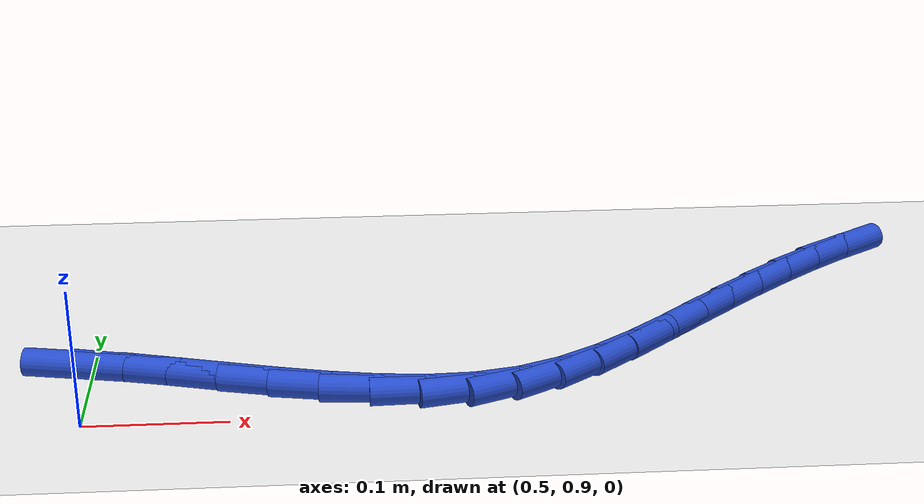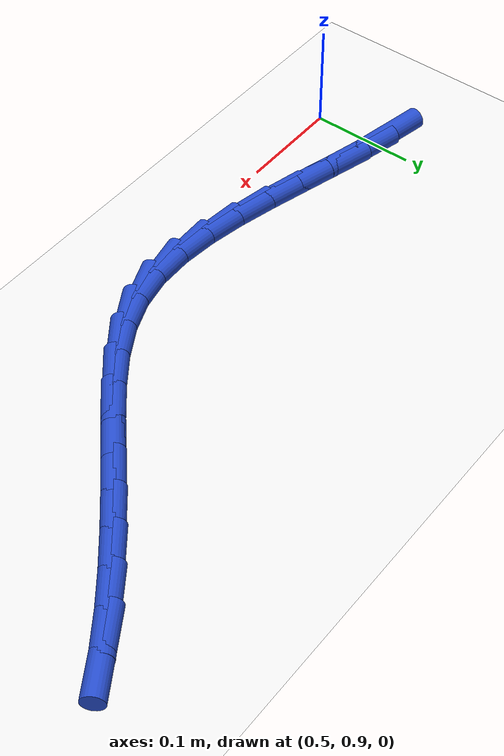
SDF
<sdf version="1.6">
 <world name="default">
  <model name="ground_plane">
   <static>1</static>
   <link name="link">
    <collision name="collision">
     <geometry><plane><normal>0 0 1</normal><size>100 100</size></plane></geometry>
     <surface><friction><ode><mu>100</mu><mu2>50</mu2></ode></friction></surface>
    </collision>
    <visual name="visual">
     <cast_shadows>0</cast_shadows>
     <geometry><plane><normal>0 0 1</normal><size>100 100</size></plane></geometry>
     <material>
      <script><uri>file://media/materials/scripts/gazebo.material</uri><name>Gazebo/WhiteGlow</name></script>
     </material>
    </visual>
   </link>
  </model>
  <model name="line">
   <link name="link_35">
    <pose>0.4923297714011501 0.9705253965544802 0.01 0 1.57 -0.18842335032717966</pose>
    <collision name="collision">
     <geometry><cylinder><radius>0.01</radius><length>0.08</length></cylinder></geometry>
    </collision>
    <visual name="visual">
     <material>
      <script><name>Gazebo/Blue</name><uri>file://media/materials/scripts/gazebo.material</uri></script>
     </material>
     <geometry><cylinder><radius>0.01</radius><length>0.08</length></cylinder></geometry>
    </visual>
   </link>
   <link name="link_36">
    <pose>0.5253210876063509 0.9642344353253495 0.01 0 1.57 -0.24117647925139293</pose>
    <collision name="collision">
     <geometry><cylinder><radius>0.01</radius><length>0.08</length></cylinder></geometry>
    </collision>
    <visual name="visual">
     <material>
      <script><name>Gazebo/Blue</name><uri>file://media/materials/scripts/gazebo.material</uri></script>
     </material>
     <geometry><cylinder><radius>0.01</radius><length>0.08</length></cylinder></geometry>
    </visual>
   </link>
   <link name="link_37">
    <pose>0.5594905483776438 0.9558299781927136 0.01 0 1.57 -0.2644116660805654</pose>
    <collision name="collision">
     <geometry><cylinder><radius>0.01</radius><length>0.08</length></cylinder></geometry>
    </collision>
    <visual name="visual">
     <material>
      <script><name>Gazebo/Blue</name><uri>file://media/materials/scripts/gazebo.material</uri></script>
     </material>
     <geometry><cylinder><radius>0.01</radius><length>0.08</length></cylinder></geometry>
    </visual>
   </link>
   <link name="link_38">
    <pose>0.5944369936108177 0.9463681935010058 0.01 0 1.57 -0.261756339791435</pose>
    <collision name="collision">
     <geometry><cylinder><radius>0.01</radius><length>0.08</length></cylinder></geometry>
    </collision>
    <visual name="visual">
     <material>
      <script><name>Gazebo/Blue</name><uri>file://media/materials/scripts/gazebo.material</uri></script>
     </material>
     <geometry><cylinder><radius>0.01</radius><length>0.08</length></cylinder></geometry>
    </visual>
   </link>
   <link name="link_39">
    <pose>0.6297592632016628 0.9369052495946587 0.01 0 1.57 -0.2338478197965022</pose>
    <collision name="collision">
     <geometry><cylinder><radius>0.01</radius><length>0.08</length></cylinder></geometry>
    </collision>
    <visual name="visual">
     <material>
      <script><name>Gazebo/Blue</name><uri>file://media/materials/scripts/gazebo.material</uri></script>
     </material>
     <geometry><cylinder><radius>0.01</radius><length>0.08</length></cylinder></geometry>
    </visual>
   </link>
   <link name="link_40">
    <pose>0.6650561970459677 0.9284973148181053 0.01 0 1.57 -0.17865061356322054</pose>
    <collision name="collision">
     <geometry><cylinder><radius>0.01</radius><length>0.08</length></cylinder></geometry>
    </collision>
    <visual name="visual">
     <material>
      <script><name>Gazebo/Blue</name><uri>file://media/materials/scripts/gazebo.material</uri></script>
     </material>
     <geometry><cylinder><radius>0.01</radius><length>0.08</length></cylinder></geometry>
    </visual>
   </link>
   <link name="link_41">
    <pose>0.6999266350395222 0.9222005575157787 0.01 0 1.57 -0.09166821383920071</pose>
    <collision name="collision">
     <geometry><cylinder><radius>0.01</radius><length>0.08</length></cylinder></geometry>
    </collision>
    <visual name="visual">
     <material>
      <script><name>Gazebo/Blue</name><uri>file://media/materials/scripts/gazebo.material</uri></script>
     </material>
     <geometry><cylinder><radius>0.01</radius><length>0.08</length></cylinder></geometry>
    </visual>
   </link>
   <link name="link_42">
    <pose>0.7339694170781157 0.9190711460321118 0.01 0 1.57 0.033330244262174444</pose>
    <collision name="collision">
     <geometry><cylinder><radius>0.01</radius><length>0.08</length></cylinder></geometry>
    </collision>
    <visual name="visual">
     <material>
      <script><name>Gazebo/Blue</name><uri>file://media/materials/scripts/gazebo.material</uri></script>
     </material>
     <geometry><cylinder><radius>0.01</radius><length>0.08</length></cylinder></geometry>
    </visual>
   </link>
   <link name="link_43">
    <pose>0.7667833830575372 0.9201652487115375 0.01 0 1.57 0.20135702583722084</pose>
    <collision name="collision">
     <geometry><cylinder><radius>0.01</radius><length>0.08</length></cylinder></geometry>
    </collision>
    <visual name="visual">
     <material>
      <script><name>Gazebo/Blue</name><uri>file://media/materials/scripts/gazebo.material</uri></script>
     </material>
     <geometry><cylinder><radius>0.01</radius><length>0.08</length></cylinder></geometry>
    </visual>
   </link>
   <link name="link_44">
    <pose>0.7979702252729663 0.9265312071475406 0.01 0 1.57 0.38580186840207403</pose>
    <collision name="collision">
     <geometry><cylinder><radius>0.01</radius><length>0.08</length></cylinder></geometry>
    </collision>
    <visual name="visual">
     <material>
      <script><name>Gazebo/Blue</name><uri>file://media/materials/scripts/gazebo.material</uri></script>
     </material>
     <geometry><cylinder><radius>0.01</radius><length>0.08</length></cylinder></geometry>
    </visual>
   </link>
   <link name="link_45">
    <pose>0.8273989559864888 0.9384838587785242 0.01 0 1.57 0.5330181427562914</pose>
    <collision name="collision">
     <geometry><cylinder><radius>0.01</radius><length>0.08</length></cylinder></geometry>
    </collision>
    <visual name="visual">
     <material>
      <script><name>Gazebo/Blue</name><uri>file://media/materials/scripts/gazebo.material</uri></script>
     </material>
     <geometry><cylinder><radius>0.01</radius><length>0.08</length></cylinder></geometry>
    </visual>
   </link>
   <link name="link_46">
    <pose>0.8554204237606388 0.9550159215897921 0.01 0 1.57 0.6364524290097345</pose>
    <collision name="collision">
     <geometry><cylinder><radius>0.01</radius><length>0.08</length></cylinder></geometry>
    </collision>
    <visual name="visual">
     <material>
      <script><name>Gazebo/Blue</name><uri>file://media/materials/scripts/gazebo.material</uri></script>
     </material>
     <geometry><cylinder><radius>0.01</radius><length>0.08</length></cylinder></geometry>
    </visual>
   </link>
   <link name="link_47">
    <pose>0.8824359589961419 0.9749815955258975 0.01 0 1.57 0.7001741330436244</pose>
    <collision name="collision">
     <geometry><cylinder><radius>0.01</radius><length>0.08</length></cylinder></geometry>
    </collision>
    <visual name="visual">
     <material>
      <script><name>Gazebo/Blue</name><uri>file://media/materials/scripts/gazebo.material</uri></script>
     </material>
     <geometry><cylinder><radius>0.01</radius><length>0.08</length></cylinder></geometry>
    </visual>
   </link>
   <link name="link_48">
    <pose>0.9088468920937238 0.9972350805313942 0.01 0 1.57 0.7287655133686541</pose>
    <collision name="collision">
     <geometry><cylinder><radius>0.01</radius><length>0.08</length></cylinder></geometry>
    </collision>
    <visual name="visual">
     <material>
      <script><name>Gazebo/Blue</name><uri>file://media/materials/scripts/gazebo.material</uri></script>
     </material>
     <geometry><cylinder><radius>0.01</radius><length>0.08</length></cylinder></geometry>
    </visual>
   </link>
   <link name="link_49">
    <pose>0.9350545534541106 1.0206305765508354 0.01 0 1.57 0.7279716062282392</pose>
    <collision name="collision">
     <geometry><cylinder><radius>0.01</radius><length>0.08</length></cylinder></geometry>
    </collision>
    <visual name="visual">
     <material>
      <script><name>Gazebo/Blue</name><uri>file://media/materials/scripts/gazebo.material</uri></script>
     </material>
     <geometry><cylinder><radius>0.01</radius><length>0.08</length></cylinder></geometry>
    </visual>
   </link>
   <link name="link_50">
    <pose>0.9614150575036575 1.0441249360684821 0.01 0 1.57 0.7137939574656241</pose>
    <collision name="collision">
     <geometry><cylinder><radius>0.01</radius><length>0.08</length></cylinder></geometry>
    </collision>
    <visual name="visual">
     <material>
      <script><name>Gazebo/Blue</name><uri>file://media/materials/scripts/gazebo.material</uri></script>
     </material>
     <geometry><cylinder><radius>0.01</radius><length>0.08</length></cylinder></geometry>
    </visual>
   </link>
   <link name="link_51">
    <pose>0.9880540544326912 1.0671982279643346 0.01 0 1.57 0.6908669163755314</pose>
    <collision name="collision">
     <geometry><cylinder><radius>0.01</radius><length>0.08</length></cylinder></geometry>
    </collision>
    <visual name="visual">
     <material>
      <script><name>Gazebo/Blue</name><uri>file://media/materials/scripts/gazebo.material</uri></script>
     </material>
     <geometry><cylinder><radius>0.01</radius><length>0.08</length></cylinder></geometry>
    </visual>
   </link>
   <link name="link_52">
    <pose>1.0150239545582729 1.0894967955181696 0.01 0 1.57 0.6586596648118807</pose>
    <collision name="collision">
     <geometry><cylinder><radius>0.01</radius><length>0.08</length></cylinder></geometry>
    </collision>
    <visual name="visual">
     <material>
      <script><name>Gazebo/Blue</name><uri>file://media/materials/scripts/gazebo.material</uri></script>
     </material>
     <geometry><cylinder><radius>0.01</radius><length>0.08</length></cylinder></geometry>
    </visual>
   </link>
   <link name="link_53">
    <pose>1.042377137877882 1.1106670508434446 0.01 0 1.57 0.6164068920458804</pose>
    <collision name="collision">
     <geometry><cylinder><radius>0.01</radius><length>0.08</length></cylinder></geometry>
    </collision>
    <visual name="visual">
     <material>
      <script><name>Gazebo/Blue</name><uri>file://media/materials/scripts/gazebo.material</uri></script>
     </material>
     <geometry><cylinder><radius>0.01</radius><length>0.08</length></cylinder></geometry>
    </visual>
   </link>
   <link name="link_54">
    <pose>1.070165984388998 1.130355406053617 0.01 0 1.57 0.5631589758289156</pose>
    <collision name="collision">
     <geometry><cylinder><radius>0.01</radius><length>0.08</length></cylinder></geometry>
    </collision>
    <visual name="visual">
     <material>
      <script><name>Gazebo/Blue</name><uri>file://media/materials/scripts/gazebo.material</uri></script>
     </material>
     <geometry><cylinder><radius>0.01</radius><length>0.08</length></cylinder></geometry>
    </visual>
   </link>
  </model>
 </world>
</sdf>
